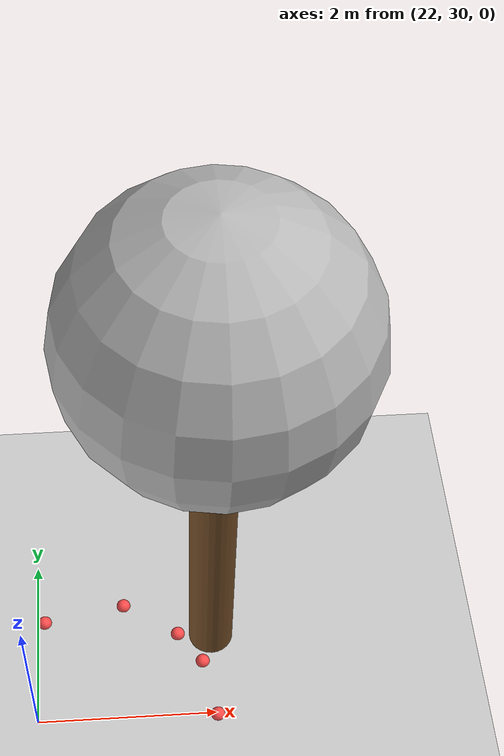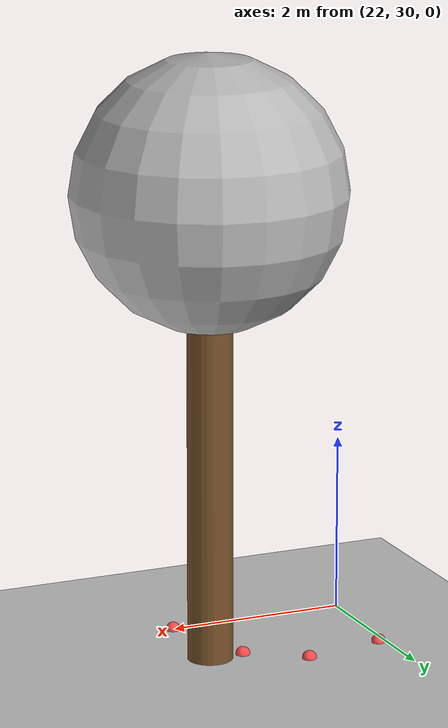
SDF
<sdf version="1.7">
 <world name="default">
  <model name="ground_plane">
   <static>1</static>
   <link name="link">
    <collision name="collision">
     <geometry><plane><normal>0 0 1</normal><size>100 100</size></plane></geometry>
     <surface>
      <contact><collide_bitmask>65535</collide_bitmask></contact>
      <friction><ode><mu>100</mu><mu2>50</mu2></ode></friction>
     </surface>
    </collision>
    <visual name="visual">
     <cast_shadows>0</cast_shadows>
     <geometry><plane><normal>0 0 1</normal><size>100 100</size></plane></geometry>
     <material>
      <script><uri>file://media/materials/scripts/gazebo.material</uri><name>Gazebo/Grey</name></script>
     </material>
    </visual>
   </link>
  </model>
  <model name="tree_simple_26">
   <static>1</static>
   <link name="link">
    <pose>0 0 0.1 0 -0 0</pose>
    <inertial>
     <mass>666</mass>
     <inertia>
      <ixx>0.0861167</ixx>
      <ixy>0</ixy>
      <ixz>0</ixz>
      <iyy>0.0861167</iyy>
      <iyz>0</iyz>
      <izz>0.0861167</izz>
     </inertia>
    </inertial>
    <collision name="collision_trunk">
     <pose>0 0 2 0 -0 0</pose>
     <geometry><cylinder><radius>0.25</radius><length>4</length></cylinder></geometry>
     <surface>
      <contact>
       <poissons_ratio>0.347</poissons_ratio>
       <elastic_modulus>8.8e+09</elastic_modulus>
       <ode><kp>100000</kp><kd>100</kd><max_vel>100</max_vel><min_depth>0.001</min_depth></ode>
      </contact>
      <friction>
       <torsional>
        <coefficient>1</coefficient>
        <use_patch_radius>0</use_patch_radius>
        <surface_radius>0.01</surface_radius>
       </torsional>
      </friction>
     </surface>
    </collision>
    <collision name="collision_treetop">
     <pose>0 0 5.2 0 -0 0</pose>
     <geometry><sphere><radius>1.5</radius></sphere></geometry>
     <surface>
      <contact>
       <poissons_ratio>0.347</poissons_ratio>
       <elastic_modulus>8.8e+09</elastic_modulus>
       <ode><kp>100000</kp><kd>100</kd><max_vel>100</max_vel><min_depth>0.001</min_depth></ode>
      </contact>
      <friction>
       <torsional>
        <coefficient>1</coefficient>
        <use_patch_radius>0</use_patch_radius>
        <surface_radius>0.01</surface_radius>
       </torsional>
      </friction>
     </surface>
    </collision>
    <visual name="trunk">
     <pose>0 0 2 0 -0 0</pose>
     <geometry><cylinder><radius>0.25</radius><length>4</length></cylinder></geometry>
     <material>
      <script>
       <uri>model://tree_simple/scripts</uri>
       <uri>model://tree_simple/materials/textures</uri>
       <name>TreeSimple/Trunk</name>
      </script>
     </material>
    </visual>
    <visual name="treetop">
     <pose>0 0 5.2 0 -0 0</pose>
     <geometry><sphere><radius>1.5</radius></sphere></geometry>
     <material>
      <script>
       <uri>model://tree_simple/scripts</uri>
       <uri>model://tree_simple/materials/textures</uri>
       <name>TreeSimple/Treetop</name>
      </script>
     </material>
    </visual>
   </link>
   <pose>24 31 -0.1 0 -0 0</pose>
  </model>
  <model name="seed_red_94">
   <link name="link">
    <inertial>
     <mass>1</mass>
     <inertia><ixx>0.1</ixx><ixy>0</ixy><ixz>0</ixz><iyy>0.1</iyy><iyz>0</iyz><izz>0.1</izz></inertia>
    </inertial>
    <visual name="visual">
     <geometry><sphere><radius>0.08</radius></sphere></geometry>
     <material>
      <script><name>Gazebo/Grey</name><uri>file://media/materials/scripts/gazebo.material</uri></script>
      <shader type="pixel"><normal_map>__default__</normal_map></shader>
      <ambient>1 0.3 0.3 1</ambient>
      <diffuse>0.7 0.7 0.7 1</diffuse>
      <specular>0.01 0.01 0.01 1</specular>
      <emissive>0 0 0 1</emissive>
     </material>
    </visual>
    <collision name="collision">
     <geometry><sphere><radius>0.0005</radius></sphere></geometry>
     <surface>
      <friction>
       <ode><mu>1</mu><mu2>1</mu2><fdir1>0 0 0</fdir1><slip1>0</slip1><slip2>0</slip2></ode>
       <torsional>
        <coefficient>1</coefficient>
        <patch_radius>0</patch_radius>
        <surface_radius>0</surface_radius>
        <use_patch_radius>1</use_patch_radius>
        <ode><slip>0</slip></ode>
       </torsional>
      </friction>
      <bounce><restitution_coefficient>0</restitution_coefficient><threshold>1e+06</threshold></bounce>
      <contact>
       <collide_without_contact>0</collide_without_contact>
       <collide_without_contact_bitmask>1</collide_without_contact_bitmask>
       <collide_bitmask>1</collide_bitmask>
       <ode>
        <soft_cfm>0</soft_cfm>
        <soft_erp>0.2</soft_erp>
        <kp>1e+13</kp>
        <kd>1</kd>
        <max_vel>0.01</max_vel>
        <min_depth>0</min_depth>
       </ode>
       <bullet>
        <split_impulse>1</split_impulse>
        <split_impulse_penetration_threshold>-0.01</split_impulse_penetration_threshold>
        <soft_cfm>0</soft_cfm>
        <soft_erp>0.2</soft_erp>
        <kp>1e+13</kp>
        <kd>1</kd>
       </bullet>
      </contact>
     </surface>
    </collision>
   </link>
   <static>0</static>
   <pose>23.0032 31.4284 0.0005 0 -0 0</pose>
  </model>
  <model name="seed_red_95">
   <link name="link">
    <inertial>
     <mass>1</mass>
     <inertia><ixx>0.1</ixx><ixy>0</ixy><ixz>0</ixz><iyy>0.1</iyy><iyz>0</iyz><izz>0.1</izz></inertia>
    </inertial>
    <visual name="visual">
     <geometry><sphere><radius>0.08</radius></sphere></geometry>
     <material>
      <script><name>Gazebo/Grey</name><uri>file://media/materials/scripts/gazebo.material</uri></script>
      <shader type="pixel"><normal_map>__default__</normal_map></shader>
      <ambient>1 0.3 0.3 1</ambient>
      <diffuse>0.7 0.7 0.7 1</diffuse>
      <specular>0.01 0.01 0.01 1</specular>
      <emissive>0 0 0 1</emissive>
     </material>
    </visual>
    <collision name="collision">
     <geometry><sphere><radius>0.0005</radius></sphere></geometry>
     <surface>
      <friction>
       <ode><mu>1</mu><mu2>1</mu2><fdir1>0 0 0</fdir1><slip1>0</slip1><slip2>0</slip2></ode>
       <torsional>
        <coefficient>1</coefficient>
        <patch_radius>0</patch_radius>
        <surface_radius>0</surface_radius>
        <use_patch_radius>1</use_patch_radius>
        <ode><slip>0</slip></ode>
       </torsional>
      </friction>
      <bounce><restitution_coefficient>0</restitution_coefficient><threshold>1e+06</threshold></bounce>
      <contact>
       <collide_without_contact>0</collide_without_contact>
       <collide_without_contact_bitmask>1</collide_without_contact_bitmask>
       <collide_bitmask>1</collide_bitmask>
       <ode>
        <soft_cfm>0</soft_cfm>
        <soft_erp>0.2</soft_erp>
        <kp>1e+13</kp>
        <kd>1</kd>
        <max_vel>0.01</max_vel>
        <min_depth>0</min_depth>
       </ode>
       <bullet>
        <split_impulse>1</split_impulse>
        <split_impulse_penetration_threshold>-0.01</split_impulse_penetration_threshold>
        <soft_cfm>0</soft_cfm>
        <soft_erp>0.2</soft_erp>
        <kp>1e+13</kp>
        <kd>1</kd>
       </bullet>
      </contact>
     </surface>
    </collision>
   </link>
   <static>0</static>
   <pose>22.0795 31.2565 0.0005 0 -0 0</pose>
  </model>
  <model name="seed_red_107">
   <link name="link">
    <inertial>
     <mass>1</mass>
     <inertia><ixx>0.1</ixx><ixy>0</ixy><ixz>0</ixz><iyy>0.1</iyy><iyz>0</iyz><izz>0.1</izz></inertia>
    </inertial>
    <visual name="visual">
     <geometry><sphere><radius>0.08</radius></sphere></geometry>
     <material>
      <script><name>Gazebo/Grey</name><uri>file://media/materials/scripts/gazebo.material</uri></script>
      <shader type="pixel"><normal_map>__default__</normal_map></shader>
      <ambient>1 0.3 0.3 1</ambient>
      <diffuse>0.7 0.7 0.7 1</diffuse>
      <specular>0.01 0.01 0.01 1</specular>
      <emissive>0 0 0 1</emissive>
     </material>
    </visual>
    <collision name="collision">
     <geometry><sphere><radius>0.0005</radius></sphere></geometry>
     <surface>
      <friction>
       <ode><mu>1</mu><mu2>1</mu2><fdir1>0 0 0</fdir1><slip1>0</slip1><slip2>0</slip2></ode>
       <torsional>
        <coefficient>1</coefficient>
        <patch_radius>0</patch_radius>
        <surface_radius>0</surface_radius>
        <use_patch_radius>1</use_patch_radius>
        <ode><slip>0</slip></ode>
       </torsional>
      </friction>
      <bounce><restitution_coefficient>0</restitution_coefficient><threshold>1e+06</threshold></bounce>
      <contact>
       <collide_without_contact>0</collide_without_contact>
       <collide_without_contact_bitmask>1</collide_without_contact_bitmask>
       <collide_bitmask>1</collide_bitmask>
       <ode>
        <soft_cfm>0</soft_cfm>
        <soft_erp>0.2</soft_erp>
        <kp>1e+13</kp>
        <kd>1</kd>
        <max_vel>0.01</max_vel>
        <min_depth>0</min_depth>
       </ode>
       <bullet>
        <split_impulse>1</split_impulse>
        <split_impulse_penetration_threshold>-0.01</split_impulse_penetration_threshold>
        <soft_cfm>0</soft_cfm>
        <soft_erp>0.2</soft_erp>
        <kp>1e+13</kp>
        <kd>1</kd>
       </bullet>
      </contact>
     </surface>
    </collision>
   </link>
   <static>0</static>
   <pose>23.6189 31.0198 0.0005 0 -0 0</pose>
  </model>
  <model name="seed_red_110">
   <link name="link">
    <inertial>
     <mass>1</mass>
     <inertia><ixx>0.1</ixx><ixy>0</ixy><ixz>0</ixz><iyy>0.1</iyy><iyz>0</iyz><izz>0.1</izz></inertia>
    </inertial>
    <visual name="visual">
     <geometry><sphere><radius>0.08</radius></sphere></geometry>
     <material>
      <script><name>Gazebo/Grey</name><uri>file://media/materials/scripts/gazebo.material</uri></script>
      <shader type="pixel"><normal_map>__default__</normal_map></shader>
      <ambient>1 0.3 0.3 1</ambient>
      <diffuse>0.7 0.7 0.7 1</diffuse>
      <specular>0.01 0.01 0.01 1</specular>
      <emissive>0 0 0 1</emissive>
     </material>
    </visual>
    <collision name="collision">
     <geometry><sphere><radius>0.0005</radius></sphere></geometry>
     <surface>
      <friction>
       <ode><mu>1</mu><mu2>1</mu2><fdir1>0 0 0</fdir1><slip1>0</slip1><slip2>0</slip2></ode>
       <torsional>
        <coefficient>1</coefficient>
        <patch_radius>0</patch_radius>
        <surface_radius>0</surface_radius>
        <use_patch_radius>1</use_patch_radius>
        <ode><slip>0</slip></ode>
       </torsional>
      </friction>
      <bounce><restitution_coefficient>0</restitution_coefficient><threshold>1e+06</threshold></bounce>
      <contact>
       <collide_without_contact>0</collide_without_contact>
       <collide_without_contact_bitmask>1</collide_without_contact_bitmask>
       <collide_bitmask>1</collide_bitmask>
       <ode>
        <soft_cfm>0</soft_cfm>
        <soft_erp>0.2</soft_erp>
        <kp>1e+13</kp>
        <kd>1</kd>
        <max_vel>0.01</max_vel>
        <min_depth>0</min_depth>
       </ode>
       <bullet>
        <split_impulse>1</split_impulse>
        <split_impulse_penetration_threshold>-0.01</split_impulse_penetration_threshold>
        <soft_cfm>0</soft_cfm>
        <soft_erp>0.2</soft_erp>
        <kp>1e+13</kp>
        <kd>1</kd>
       </bullet>
      </contact>
     </surface>
    </collision>
   </link>
   <static>0</static>
   <pose>24.0125 29.9787 0.0005 0 -0 0</pose>
  </model>
  <model name="seed_red_111">
   <link name="link">
    <inertial>
     <mass>1</mass>
     <inertia><ixx>0.1</ixx><ixy>0</ixy><ixz>0</ixz><iyy>0.1</iyy><iyz>0</iyz><izz>0.1</izz></inertia>
    </inertial>
    <visual name="visual">
     <geometry><sphere><radius>0.08</radius></sphere></geometry>
     <material>
      <script><name>Gazebo/Grey</name><uri>file://media/materials/scripts/gazebo.material</uri></script>
      <shader type="pixel"><normal_map>__default__</normal_map></shader>
      <ambient>1 0.3 0.3 1</ambient>
      <diffuse>0.7 0.7 0.7 1</diffuse>
      <specular>0.01 0.01 0.01 1</specular>
      <emissive>0 0 0 1</emissive>
     </material>
    </visual>
    <collision name="collision">
     <geometry><sphere><radius>0.0005</radius></sphere></geometry>
     <surface>
      <friction>
       <ode><mu>1</mu><mu2>1</mu2><fdir1>0 0 0</fdir1><slip1>0</slip1><slip2>0</slip2></ode>
       <torsional>
        <coefficient>1</coefficient>
        <patch_radius>0</patch_radius>
        <surface_radius>0</surface_radius>
        <use_patch_radius>1</use_patch_radius>
        <ode><slip>0</slip></ode>
       </torsional>
      </friction>
      <bounce><restitution_coefficient>0</restitution_coefficient><threshold>1e+06</threshold></bounce>
      <contact>
       <collide_without_contact>0</collide_without_contact>
       <collide_without_contact_bitmask>1</collide_without_contact_bitmask>
       <collide_bitmask>1</collide_bitmask>
       <ode>
        <soft_cfm>0</soft_cfm>
        <soft_erp>0.2</soft_erp>
        <kp>1e+13</kp>
        <kd>1</kd>
        <max_vel>0.01</max_vel>
        <min_depth>0</min_depth>
       </ode>
       <bullet>
        <split_impulse>1</split_impulse>
        <split_impulse_penetration_threshold>-0.01</split_impulse_penetration_threshold>
        <soft_cfm>0</soft_cfm>
        <soft_erp>0.2</soft_erp>
        <kp>1e+13</kp>
        <kd>1</kd>
       </bullet>
      </contact>
     </surface>
    </collision>
   </link>
   <static>0</static>
   <pose>23.8846 30.6502 0.0005 0 -0 0</pose>
  </model>
 </world>
</sdf>
